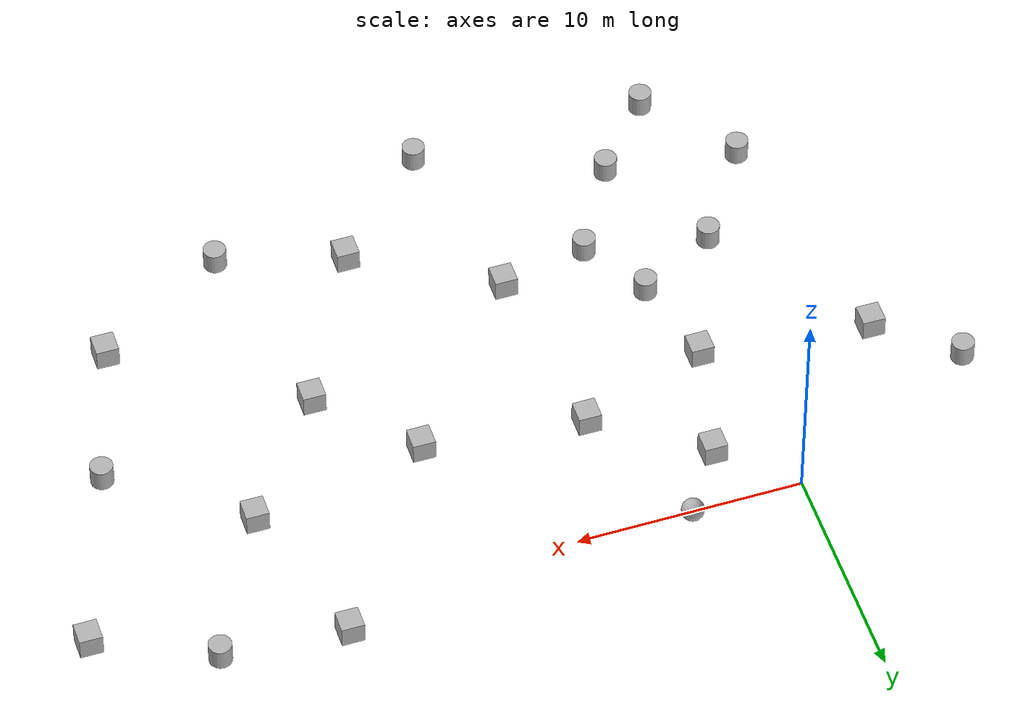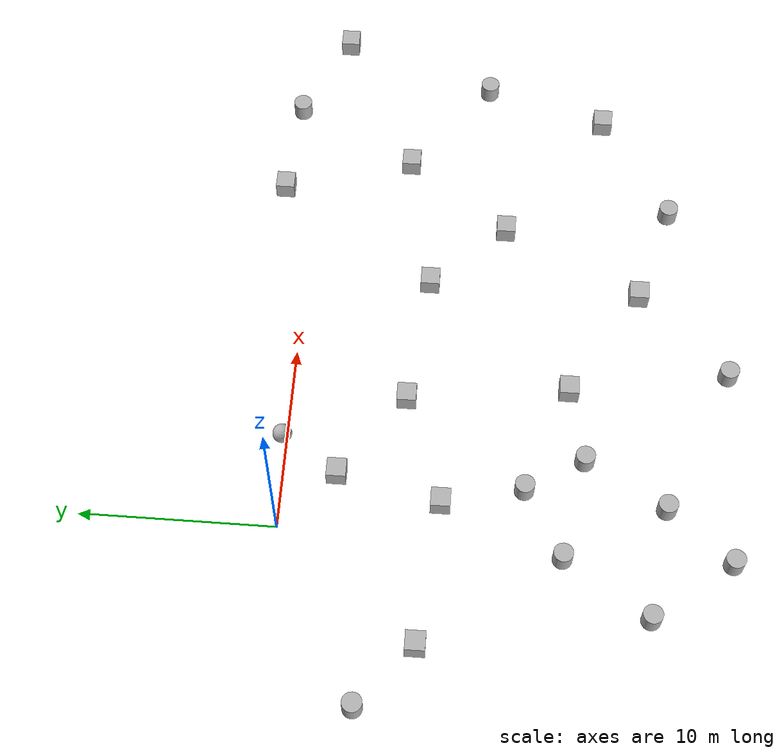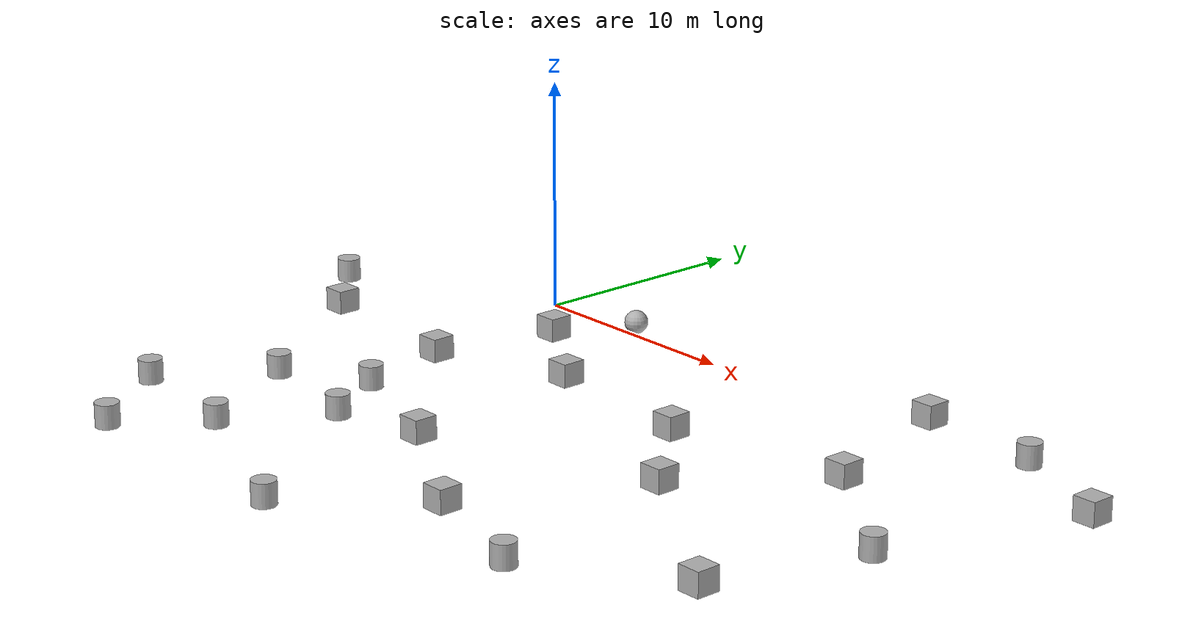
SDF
<sdf version="1.9">
 <world name="default">
  <model name="sphere">
   <pose>4.98141 0.239957 0.5 0 -0 0</pose>
   <link name="sphere_link">
    <inertial>
     <inertia>
      <ixx>0.10000000000000001</ixx>
      <ixy>0</ixy>
      <ixz>0</ixz>
      <iyy>0.10000000000000001</iyy>
      <iyz>0</iyz>
      <izz>0.10000000000000001</izz>
     </inertia>
     <mass>1</mass>
    </inertial>
    <collision name="sphere_collision"><geometry><sphere><radius>0.5</radius></sphere></geometry></collision>
    <visual name="sphere_visual">
     <geometry><sphere><radius>0.5</radius></sphere></geometry>
     <material>
      <ambient>0.3 0.3 0.3 1</ambient>
      <diffuse>0.7 0.7 0.7 1</diffuse>
      <specular>1 1 1 1</specular>
     </material>
    </visual>
   </link>
   <static>false</static>
  </model>
  <model name="box_0">
   <pose>7.59707 -5.95729 0.5 0 -0 0</pose>
   <link name="box_link">
    <inertial>
     <inertia><ixx>0.16666</ixx><ixy>0</ixy><ixz>0</ixz><iyy>0.16666</iyy><iyz>0</iyz><izz>0.16666</izz></inertia>
     <mass>1</mass>
    </inertial>
    <collision name="box_collision"><geometry><box><size>1 1 1</size></box></geometry></collision>
    <visual name="box_visual">
     <geometry><box><size>1 1 1</size></box></geometry>
     <material>
      <ambient>0.3 0.3 0.3 1</ambient>
      <diffuse>0.7 0.7 0.7 1</diffuse>
      <specular>1 1 1 1</specular>
     </material>
    </visual>
   </link>
   <static>false</static>
  </model>
  <model name="box_1">
   <pose>-5.70612 -7.25758 0.5 0 -0 0</pose>
   <link name="box_link">
    <inertial>
     <inertia><ixx>0.16666</ixx><ixy>0</ixy><ixz>0</ixz><iyy>0.16666</iyy><iyz>0</iyz><izz>0.16666</izz></inertia>
     <mass>1</mass>
    </inertial>
    <collision name="box_collision"><geometry><box><size>1 1 1</size></box></geometry></collision>
    <visual name="box_visual">
     <geometry><box><size>1 1 1</size></box></geometry>
     <material>
      <ambient>0.3 0.3 0.3 1</ambient>
      <diffuse>0.7 0.7 0.7 1</diffuse>
      <specular>1 1 1 1</specular>
     </material>
    </visual>
   </link>
   <static>false</static>
  </model>
  <model name="box_3">
   <pose>1.80236 -8.0413 0.5 0 -0 0</pose>
   <link name="box_link">
    <inertial>
     <inertia><ixx>0.16666</ixx><ixy>0</ixy><ixz>0</ixz><iyy>0.16666</iyy><iyz>0</iyz><izz>0.16666</izz></inertia>
     <mass>1</mass>
    </inertial>
    <collision name="box_collision"><geometry><box><size>1 1 1</size></box></geometry></collision>
    <visual name="box_visual">
     <geometry><box><size>1 1 1</size></box></geometry>
     <material>
      <ambient>0.3 0.3 0.3 1</ambient>
      <diffuse>0.7 0.7 0.7 1</diffuse>
      <specular>1 1 1 1</specular>
     </material>
    </visual>
   </link>
   <static>false</static>
  </model>
  <model name="box_6">
   <pose>26.016 -15.9368 0.5 0 -0 0</pose>
   <link name="box_link">
    <inertial>
     <inertia><ixx>0.16666</ixx><ixy>0</ixy><ixz>0</ixz><iyy>0.16666</iyy><iyz>0</iyz><izz>0.16666</izz></inertia>
     <mass>1</mass>
    </inertial>
    <collision name="box_collision"><geometry><box><size>1 1 1</size></box></geometry></collision>
    <visual name="box_visual">
     <geometry><box><size>1 1 1</size></box></geometry>
     <material>
      <ambient>0.3 0.3 0.3 1</ambient>
      <diffuse>0.7 0.7 0.7 1</diffuse>
      <specular>1 1 1 1</specular>
     </material>
    </visual>
   </link>
   <static>false</static>
  </model>
  <model name="box_7_1">
   <pose>14.7213 -6.76051 0.5 0 -0 0</pose>
   <link name="box_link">
    <inertial>
     <inertia><ixx>0.16666</ixx><ixy>0</ixy><ixz>0</ixz><iyy>0.16666</iyy><iyz>0</iyz><izz>0.16666</izz></inertia>
     <mass>1</mass>
    </inertial>
    <collision name="box_collision"><geometry><box><size>1 1 1</size></box></geometry></collision>
    <visual name="box_visual">
     <geometry><box><size>1 1 1</size></box></geometry>
     <material>
      <ambient>0.3 0.3 0.3 1</ambient>
      <diffuse>0.7 0.7 0.7 1</diffuse>
      <specular>1 1 1 1</specular>
     </material>
    </visual>
   </link>
   <static>false</static>
  </model>
  <model name="box_7_4">
   <pose>22.5059 -5.24715 0.5 0 -0 0</pose>
   <link name="box_link">
    <inertial>
     <inertia><ixx>0.16666</ixx><ixy>0</ixy><ixz>0</ixz><iyy>0.16666</iyy><iyz>0</iyz><izz>0.16666</izz></inertia>
     <mass>1</mass>
    </inertial>
    <collision name="box_collision"><geometry><box><size>1 1 1</size></box></geometry></collision>
    <visual name="box_visual">
     <geometry><box><size>1 1 1</size></box></geometry>
     <material>
      <ambient>0.3 0.3 0.3 1</ambient>
      <diffuse>0.7 0.7 0.7 1</diffuse>
      <specular>1 1 1 1</specular>
     </material>
    </visual>
   </link>
   <static>false</static>
  </model>
  <model name="box_7_5">
   <pose>8.59293 -14.3425 0.5 0 -0 0</pose>
   <link name="box_link">
    <inertial>
     <inertia><ixx>0.16666</ixx><ixy>0</ixy><ixz>0</ixz><iyy>0.16666</iyy><iyz>0</iyz><izz>0.16666</izz></inertia>
     <mass>1</mass>
    </inertial>
    <collision name="box_collision"><geometry><box><size>1 1 1</size></box></geometry></collision>
    <visual name="box_visual">
     <geometry><box><size>1 1 1</size></box></geometry>
     <material>
      <ambient>0.3 0.3 0.3 1</ambient>
      <diffuse>0.7 0.7 0.7 1</diffuse>
      <specular>1 1 1 1</specular>
     </material>
    </visual>
   </link>
   <static>false</static>
  </model>
  <model name="box_7_6">
   <pose>14.6223 -17.9706 0.5 0 -0 0</pose>
   <link name="box_link">
    <inertial>
     <inertia><ixx>0.16666</ixx><ixy>0</ixy><ixz>0</ixz><iyy>0.16666</iyy><iyz>0</iyz><izz>0.16666</izz></inertia>
     <mass>1</mass>
    </inertial>
    <collision name="box_collision"><geometry><box><size>1 1 1</size></box></geometry></collision>
    <visual name="box_visual">
     <geometry><box><size>1 1 1</size></box></geometry>
     <material>
      <ambient>0.3 0.3 0.3 1</ambient>
      <diffuse>0.7 0.7 0.7 1</diffuse>
      <specular>1 1 1 1</specular>
     </material>
    </visual>
   </link>
   <static>false</static>
  </model>
  <model name="box_7_7">
   <pose>3.06361 -2.7188 0.5 0 -0 0</pose>
   <link name="box_link">
    <inertial>
     <inertia><ixx>0.16666</ixx><ixy>0</ixy><ixz>0</ixz><iyy>0.16666</iyy><iyz>0</iyz><izz>0.16666</izz></inertia>
     <mass>1</mass>
    </inertial>
    <collision name="box_collision"><geometry><box><size>1 1 1</size></box></geometry></collision>
    <visual name="box_visual">
     <geometry><box><size>1 1 1</size></box></geometry>
     <material>
      <ambient>0.3 0.3 0.3 1</ambient>
      <diffuse>0.7 0.7 0.7 1</diffuse>
      <specular>1 1 1 1</specular>
     </material>
    </visual>
   </link>
   <static>false</static>
  </model>
  <model name="box_7_13">
   <pose>30.8892 -1.11315 0.5 0 -0 0</pose>
   <link name="box_link">
    <inertial>
     <inertia><ixx>0.16666</ixx><ixy>0</ixy><ixz>0</ixz><iyy>0.16666</iyy><iyz>0</iyz><izz>0.16666</izz></inertia>
     <mass>1</mass>
    </inertial>
    <collision name="box_collision"><geometry><box><size>1 1 1</size></box></geometry></collision>
    <visual name="box_visual">
     <geometry><box><size>1 1 1</size></box></geometry>
     <material>
      <ambient>0.3 0.3 0.3 1</ambient>
      <diffuse>0.7 0.7 0.7 1</diffuse>
      <specular>1 1 1 1</specular>
     </material>
    </visual>
   </link>
   <static>false</static>
  </model>
  <model name="box_7_14">
   <pose>20.4676 1.65906 0.5 0 -0 0</pose>
   <link name="box_link">
    <inertial>
     <inertia><ixx>0.16666</ixx><ixy>0</ixy><ixz>0</ixz><iyy>0.16666</iyy><iyz>0</iyz><izz>0.16666</izz></inertia>
     <mass>1</mass>
    </inertial>
    <collision name="box_collision"><geometry><box><size>1 1 1</size></box></geometry></collision>
    <visual name="box_visual">
     <geometry><box><size>1 1 1</size></box></geometry>
     <material>
      <ambient>0.3 0.3 0.3 1</ambient>
      <diffuse>0.7 0.7 0.7 1</diffuse>
      <specular>1 1 1 1</specular>
     </material>
    </visual>
   </link>
   <static>false</static>
  </model>
  <model name="cylinder_0">
   <pose>25.9107 1.23922 0.5 0 -0 0</pose>
   <link name="cylinder_link">
    <inertial>
     <inertia>
      <ixx>0.14580000000000001</ixx>
      <ixy>0</ixy>
      <ixz>0</ixz>
      <iyy>0.14580000000000001</iyy>
      <iyz>0</iyz>
      <izz>0.125</izz>
     </inertia>
     <mass>1</mass>
    </inertial>
    <collision name="cylinder_collision">
     <geometry><cylinder><radius>0.5</radius><length>1</length></cylinder></geometry>
    </collision>
    <visual name="cylinder_visual">
     <geometry><cylinder><radius>0.5</radius><length>1</length></cylinder></geometry>
     <material>
      <ambient>0.3 0.3 0.3 1</ambient>
      <diffuse>0.7 0.7 0.7 1</diffuse>
      <specular>1 1 1 1</specular>
     </material>
    </visual>
   </link>
   <static>false</static>
  </model>
  <model name="box_7_16">
   <pose>18.3625 -10.7046 0.5 0 -0 0</pose>
   <link name="box_link">
    <inertial>
     <inertia><ixx>0.16666</ixx><ixy>0</ixy><ixz>0</ixz><iyy>0.16666</iyy><iyz>0</iyz><izz>0.16666</izz></inertia>
     <mass>1</mass>
    </inertial>
    <collision name="box_collision"><geometry><box><size>1 1 1</size></box></geometry></collision>
    <visual name="box_visual">
     <geometry><box><size>1 1 1</size></box></geometry>
     <material>
      <ambient>0.3 0.3 0.3 1</ambient>
      <diffuse>0.7 0.7 0.7 1</diffuse>
      <specular>1 1 1 1</specular>
     </material>
    </visual>
   </link>
   <static>false</static>
  </model>
  <model name="cylinder_1_1">
   <pose>-8.91153 -4.50786 0.5 0 -0 0</pose>
   <link name="cylinder_link">
    <inertial>
     <inertia>
      <ixx>0.14580000000000001</ixx>
      <ixy>0</ixy>
      <ixz>0</ixz>
      <iyy>0.14580000000000001</iyy>
      <iyz>0</iyz>
      <izz>0.125</izz>
     </inertia>
     <mass>1</mass>
    </inertial>
    <collision name="cylinder_collision">
     <geometry><cylinder><radius>0.5</radius><length>1</length></cylinder></geometry>
    </collision>
    <visual name="cylinder_visual">
     <geometry><cylinder><radius>0.5</radius><length>1</length></cylinder></geometry>
     <material>
      <ambient>0.3 0.3 0.3 1</ambient>
      <diffuse>0.7 0.7 0.7 1</diffuse>
      <specular>1 1 1 1</specular>
     </material>
    </visual>
   </link>
   <static>false</static>
  </model>
  <model name="cylinder_1_2">
   <pose>-3.60131 -18.5404 0.5 0 -0 0</pose>
   <link name="cylinder_link">
    <inertial>
     <inertia>
      <ixx>0.14580000000000001</ixx>
      <ixy>0</ixy>
      <ixz>0</ixz>
      <iyy>0.14580000000000001</iyy>
      <iyz>0</iyz>
      <izz>0.125</izz>
     </inertia>
     <mass>1</mass>
    </inertial>
    <collision name="cylinder_collision">
     <geometry><cylinder><radius>0.5</radius><length>1</length></cylinder></geometry>
    </collision>
    <visual name="cylinder_visual">
     <geometry><cylinder><radius>0.5</radius><length>1</length></cylinder></geometry>
     <material>
      <ambient>0.3 0.3 0.3 1</ambient>
      <diffuse>0.7 0.7 0.7 1</diffuse>
      <specular>1 1 1 1</specular>
     </material>
    </visual>
   </link>
   <static>false</static>
  </model>
  <model name="cylinder_1_3">
   <pose>2.22957 -19.3554 0.5 0 -0 0</pose>
   <link name="cylinder_link">
    <inertial>
     <inertia>
      <ixx>0.14580000000000001</ixx>
      <ixy>0</ixy>
      <ixz>0</ixz>
      <iyy>0.14580000000000001</iyy>
      <iyz>0</iyz>
      <izz>0.125</izz>
     </inertia>
     <mass>1</mass>
    </inertial>
    <collision name="cylinder_collision">
     <geometry><cylinder><radius>0.5</radius><length>1</length></cylinder></geometry>
    </collision>
    <visual name="cylinder_visual">
     <geometry><cylinder><radius>0.5</radius><length>1</length></cylinder></geometry>
     <material>
      <ambient>0.3 0.3 0.3 1</ambient>
      <diffuse>0.7 0.7 0.7 1</diffuse>
      <specular>1 1 1 1</specular>
     </material>
    </visual>
   </link>
   <static>false</static>
  </model>
  <model name="cylinder_1_4">
   <pose>-0.745655 -14.1988 0.5 0 -0 0</pose>
   <link name="cylinder_link">
    <inertial>
     <inertia>
      <ixx>0.14580000000000001</ixx>
      <ixy>0</ixy>
      <ixz>0</ixz>
      <iyy>0.14580000000000001</iyy>
      <iyz>0</iyz>
      <izz>0.125</izz>
     </inertia>
     <mass>1</mass>
    </inertial>
    <collision name="cylinder_collision">
     <geometry><cylinder><radius>0.5</radius><length>1</length></cylinder></geometry>
    </collision>
    <visual name="cylinder_visual">
     <geometry><cylinder><radius>0.5</radius><length>1</length></cylinder></geometry>
     <material>
      <ambient>0.3 0.3 0.3 1</ambient>
      <diffuse>0.7 0.7 0.7 1</diffuse>
      <specular>1 1 1 1</specular>
     </material>
    </visual>
   </link>
   <static>false</static>
  </model>
  <model name="cylinder_1_5">
   <pose>10.0499 -22.6356 0.5 0 -0 0</pose>
   <link name="cylinder_link">
    <inertial>
     <inertia>
      <ixx>0.14580000000000001</ixx>
      <ixy>0</ixy>
      <ixz>0</ixz>
      <iyy>0.14580000000000001</iyy>
      <iyz>0</iyz>
      <izz>0.125</izz>
     </inertia>
     <mass>1</mass>
    </inertial>
    <collision name="cylinder_collision">
     <geometry><cylinder><radius>0.5</radius><length>1</length></cylinder></geometry>
    </collision>
    <visual name="cylinder_visual">
     <geometry><cylinder><radius>0.5</radius><length>1</length></cylinder></geometry>
     <material>
      <ambient>0.3 0.3 0.3 1</ambient>
      <diffuse>0.7 0.7 0.7 1</diffuse>
      <specular>1 1 1 1</specular>
     </material>
    </visual>
   </link>
   <static>false</static>
  </model>
  <model name="cylinder_1_6">
   <pose>4.61234 -15.2206 0.5 0 -0 0</pose>
   <link name="cylinder_link">
    <inertial>
     <inertia>
      <ixx>0.14580000000000001</ixx>
      <ixy>0</ixy>
      <ixz>0</ixz>
      <iyy>0.14580000000000001</iyy>
      <iyz>0</iyz>
      <izz>0.125</izz>
     </inertia>
     <mass>1</mass>
    </inertial>
    <collision name="cylinder_collision">
     <geometry><cylinder><radius>0.5</radius><length>1</length></cylinder></geometry>
    </collision>
    <visual name="cylinder_visual">
     <geometry><cylinder><radius>0.5</radius><length>1</length></cylinder></geometry>
     <material>
      <ambient>0.3 0.3 0.3 1</ambient>
      <diffuse>0.7 0.7 0.7 1</diffuse>
      <specular>1 1 1 1</specular>
     </material>
    </visual>
   </link>
   <static>false</static>
  </model>
  <model name="cylinder_1_7">
   <pose>2.814 -12.2136 0.5 0 -0 0</pose>
   <link name="cylinder_link">
    <inertial>
     <inertia>
      <ixx>0.14580000000000001</ixx>
      <ixy>0</ixy>
      <ixz>0</ixz>
      <iyy>0.14580000000000001</iyy>
      <iyz>0</iyz>
      <izz>0.125</izz>
     </inertia>
     <mass>1</mass>
    </inertial>
    <collision name="cylinder_collision">
     <geometry><cylinder><radius>0.5</radius><length>1</length></cylinder></geometry>
    </collision>
    <visual name="cylinder_visual">
     <geometry><cylinder><radius>0.5</radius><length>1</length></cylinder></geometry>
     <material>
      <ambient>0.3 0.3 0.3 1</ambient>
      <diffuse>0.7 0.7 0.7 1</diffuse>
      <specular>1 1 1 1</specular>
     </material>
    </visual>
   </link>
   <static>false</static>
  </model>
  <model name="cylinder_1_8">
   <pose>-0.479004 -22.6018 0.5 0 -0 0</pose>
   <link name="cylinder_link">
    <inertial>
     <inertia>
      <ixx>0.14580000000000001</ixx>
      <ixy>0</ixy>
      <ixz>0</ixz>
      <iyy>0.14580000000000001</iyy>
      <iyz>0</iyz>
      <izz>0.125</izz>
     </inertia>
     <mass>1</mass>
    </inertial>
    <collision name="cylinder_collision">
     <geometry><cylinder><radius>0.5</radius><length>1</length></cylinder></geometry>
    </collision>
    <visual name="cylinder_visual">
     <geometry><cylinder><radius>0.5</radius><length>1</length></cylinder></geometry>
     <material>
      <ambient>0.3 0.3 0.3 1</ambient>
      <diffuse>0.7 0.7 0.7 1</diffuse>
      <specular>1 1 1 1</specular>
     </material>
    </visual>
   </link>
   <static>false</static>
  </model>
  <model name="cylinder_1_16">
   <pose>20.047 -19.5947 0.5 0 -0 0</pose>
   <link name="cylinder_link">
    <inertial>
     <inertia>
      <ixx>0.14580000000000001</ixx>
      <ixy>0</ixy>
      <ixz>0</ixz>
      <iyy>0.14580000000000001</iyy>
      <iyz>0</iyz>
      <izz>0.125</izz>
     </inertia>
     <mass>1</mass>
    </inertial>
    <collision name="cylinder_collision">
     <geometry><cylinder><radius>0.5</radius><length>1</length></cylinder></geometry>
    </collision>
    <visual name="cylinder_visual">
     <geometry><cylinder><radius>0.5</radius><length>1</length></cylinder></geometry>
     <material>
      <ambient>0.3 0.3 0.3 1</ambient>
      <diffuse>0.7 0.7 0.7 1</diffuse>
      <specular>1 1 1 1</specular>
     </material>
    </visual>
   </link>
   <static>false</static>
  </model>
  <model name="cylinder_1_17">
   <pose>27.9837 -9.43326 0.5 0 -0 0</pose>
   <link name="cylinder_link">
    <inertial>
     <inertia>
      <ixx>0.14580000000000001</ixx>
      <ixy>0</ixy>
      <ixz>0</ixz>
      <iyy>0.14580000000000001</iyy>
      <iyz>0</iyz>
      <izz>0.125</izz>
     </inertia>
     <mass>1</mass>
    </inertial>
    <collision name="cylinder_collision">
     <geometry><cylinder><radius>0.5</radius><length>1</length></cylinder></geometry>
    </collision>
    <visual name="cylinder_visual">
     <geometry><cylinder><radius>0.5</radius><length>1</length></cylinder></geometry>
     <material>
      <ambient>0.3 0.3 0.3 1</ambient>
      <diffuse>0.7 0.7 0.7 1</diffuse>
      <specular>1 1 1 1</specular>
     </material>
    </visual>
   </link>
   <static>false</static>
  </model>
 </world>
</sdf>
